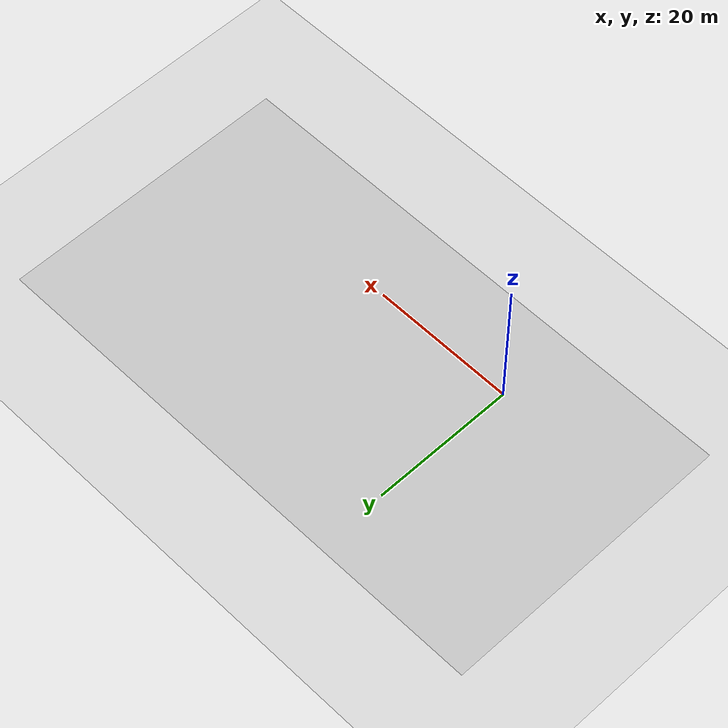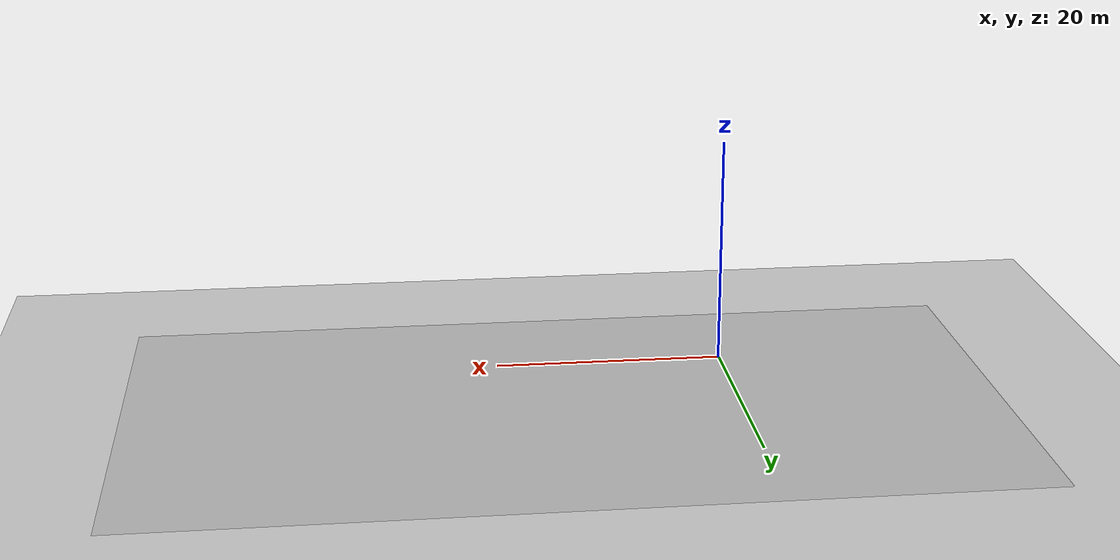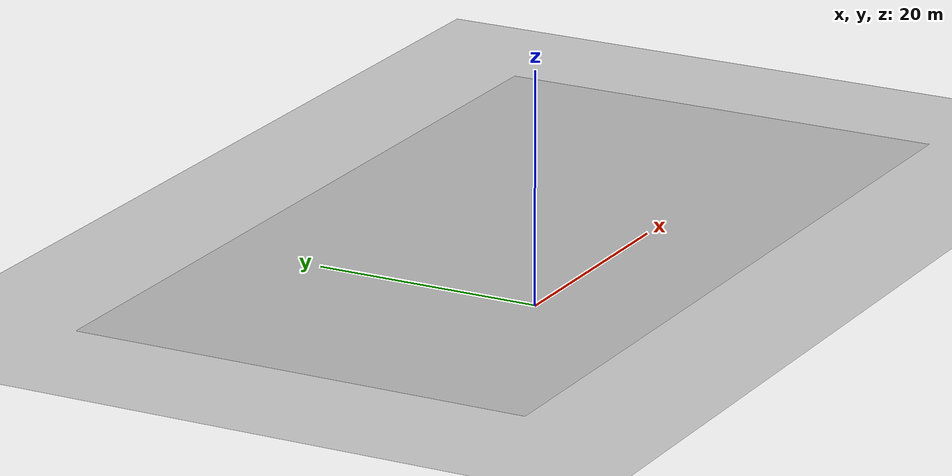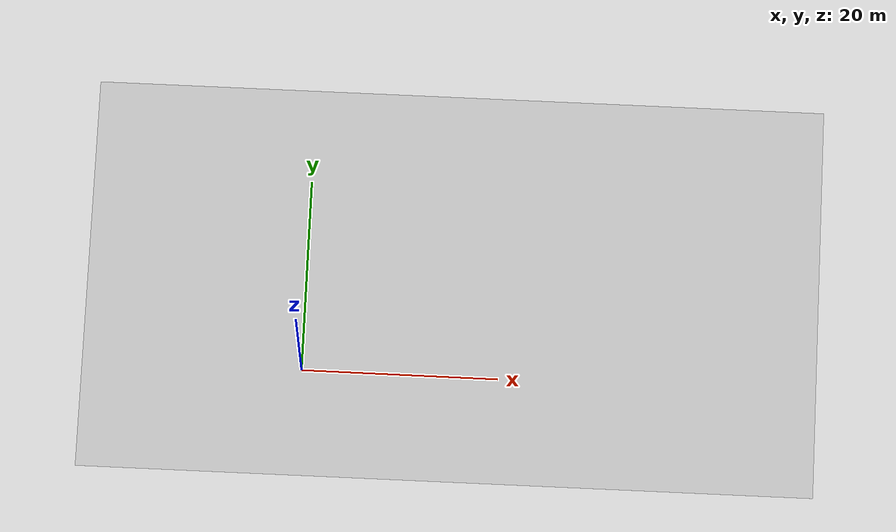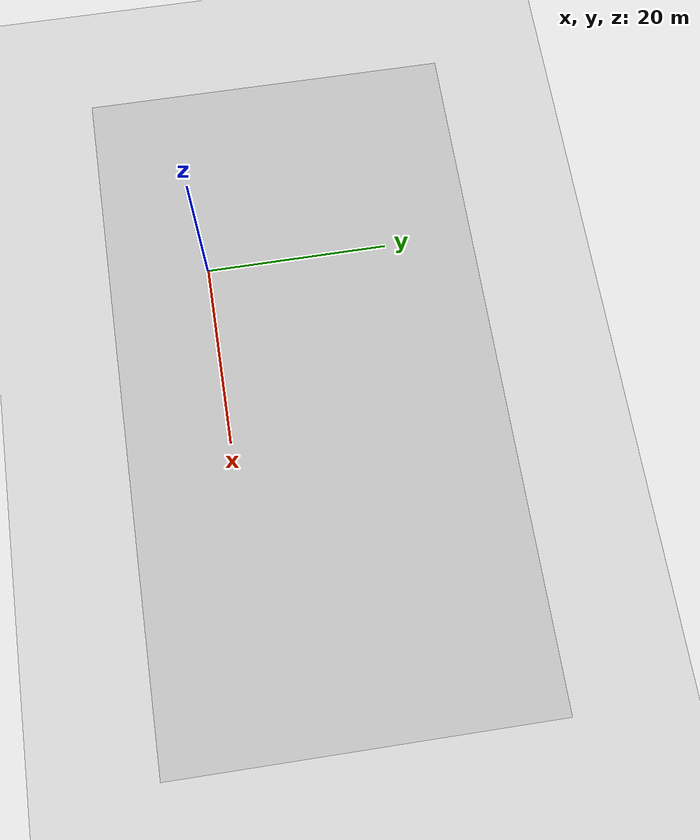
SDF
<?xml version="1.0"?>
<sdf version="1.4">
<world name="fyp_track_12">
<scene>
<ambient>0.5 0.5 0.5 1.0</ambient>
<shadows>0</shadows>
<sky></sky>
</scene>
<include>
<uri>model://ground_plane</uri>
<pose>0.0 0.0 -0.05 0 0 0</pose>
</include>
<include>
<uri>model://sun</uri>
<pose>20 10 15.0 0 0 0</pose>
<cast_shadows>false</cast_shadows>
<attenuation>
<constant>0.7</constant>
<linear>0.01</linear>
<quadratic>0.0</quadratic>
<range>100</range>
</attenuation>
</include>
<light type="point" name="Light 1">
<pose>20 10 30 0 0 0</pose>
<diffuse>.9 .9 .9 1</diffuse>
<specular>.1 .1 .1 1</specular>
<attenuation>
<constant>0.7</constant>
<linear>0.01</linear>
<quadratic>0.00</quadratic>
<range>100</range>
</attenuation>
<direction>0 0 -1</direction>
<cast_shadows>false</cast_shadows>
</light>
<include>
<uri>model://models/fyp_tracks/track12</uri>
<pose>0 0 0 0 0 0</pose>
<name>racetrack</name>
</include>
</world>
</sdf>

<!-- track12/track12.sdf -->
<sdf version="1.4">
<model name="track12_model">
<link name="fullLink">
<collision name="collision">
<pose>0 0 0 0 0 0</pose>
<geometry>
<mesh>
<uri>model://meshes/fyp_tracks/track12.dae</uri>
</mesh>
</geometry>
</collision>
<visual name="visual">
<pose>0 0 0 0 0 0</pose>
<geometry>
<mesh>
<uri>model://meshes/fyp_tracks/track12.dae</uri>
</mesh>
</geometry>
</visual>
</link>
<static>1</static>
</model>
</sdf>
